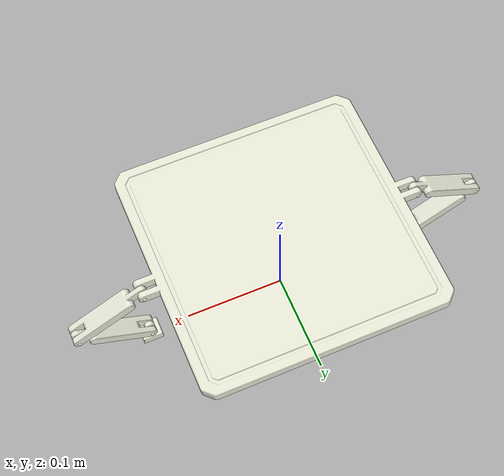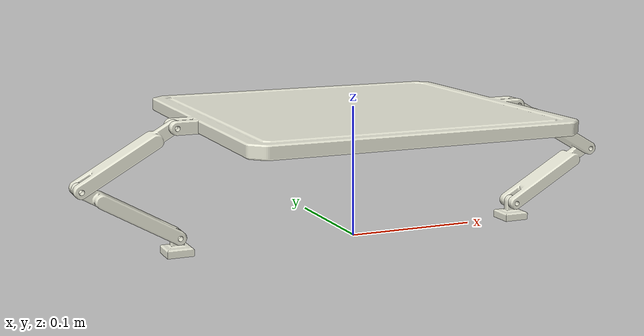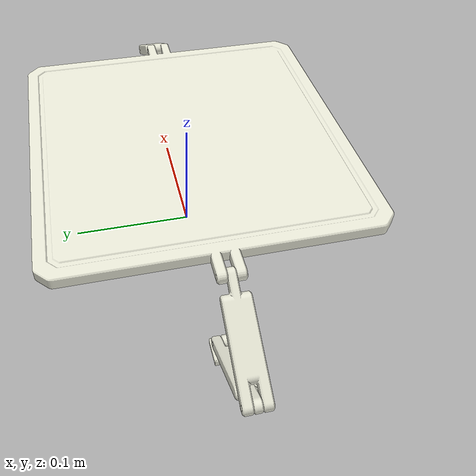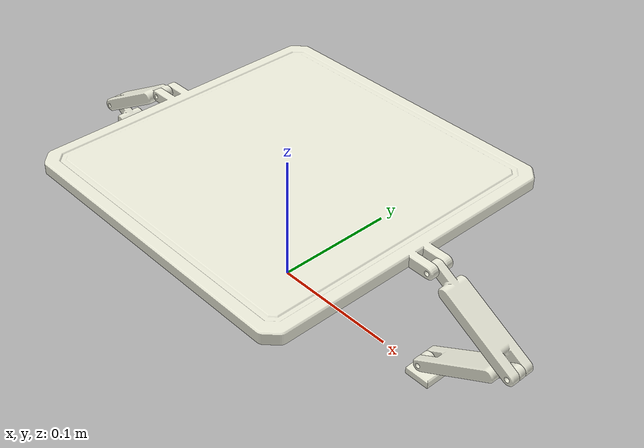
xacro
<?xml version="1.0"?>

<robot name="juggling_platform_2d" xmlns:xacro="http://www.ros.org/wiki/xacro">

    <xacro:include filename="$(find balancing_platform_2d_description)/urdf/include/const.xacro"/>
    <xacro:include filename="$(find balancing_platform_2d_description)/urdf/include/materials.xacro"/>

    <link name="world"/>

    <link name="left_motor">
        <visual>
            <origin rpy="0 0 0" xyz="0 0 0"/>
            <geometry>
                <mesh filename="package://balancing_platform_2d_description/meshes/motor.stl" scale="0.001 0.001 0.001"/>
            </geometry>
            <material name="silver"/>
        </visual>
        <inertial>
            <origin rpy="0 0 0" xyz="${motor_com_x} ${motor_com_y} ${motor_com_z}"/>
            <mass value="${motor_mass}"/>
            <inertia
                ixx="${motor_ixx}" ixy="${motor_ixy}" ixz="${motor_ixz}"
                iyy="${motor_iyy}" iyz="${motor_iyz}"
                izz="${motor_izz}"/>
        </inertial>
    </link>

    <joint name="left_base_joint" type="fixed">
        <origin rpy="0 0 0" xyz="-0.14 0 0"/>
        <parent link="world"/>
        <child link="left_motor"/>
    </joint>

    <link name="left_low_arm">
        <visual>
            <origin rpy="0 0 0" xyz="0 0 0.04"/>
            <geometry>
                <mesh filename="package://balancing_platform_2d_description/meshes/arm.stl" scale="0.001 0.001 0.001"/>
            </geometry>
            <material name="silver"/>
        </visual>
        <inertial>
            <origin rpy="0 0 0" xyz="${arm_com_x} ${arm_com_y} ${arm_com_z}"/>
            <mass value="${arm_mass}"/>
            <inertia
                ixx="${arm_ixx}" ixy="${arm_ixy}" ixz="${arm_ixz}"
                iyy="${arm_iyy}" iyz="${arm_iyz}"
                izz="${arm_izz}"/>
        </inertial>
    </link>

    <joint name="left_motor_joint" type="revolute">
        <origin rpy="0 ${-pi/3} 0" xyz="0 0 0.014"/>
        <parent link="left_motor"/>
        <child link="left_low_arm"/>
        <axis xyz="0 1 0"/>
        <dynamics damping="${damping}" friction="${friction}"/>
        <limit effort="${motor_torque_max}" velocity="${motor_velocity_max}" lower="${motor_position_min}" upper="${motor_position_max}"/>
    </joint>

    <link name="left_top_arm">
        <visual>
            <origin rpy="0 0 0" xyz="0 0 0.04"/>
            <geometry>
                <mesh filename="package://balancing_platform_2d_description/meshes/arm.stl" scale="0.001 0.001 0.001"/>
            </geometry>
            <material name="silver"/>
        </visual>
        <inertial>
            <origin rpy="0 0 0" xyz="${arm_com_x} ${arm_com_y} ${arm_com_z}"/>
            <mass value="${arm_mass}"/>
            <inertia
                ixx="${arm_ixx}" ixy="${arm_ixy}" ixz="${arm_ixz}"
                iyy="${arm_iyy}" iyz="${arm_iyz}"
                izz="${arm_izz}"/>
        </inertial>
    </link>

    <joint name="left_arm_joint" type="revolute">
        <origin rpy="0 ${2*pi/3} 0" xyz="0 0 0.08"/>
        <parent link="left_low_arm"/>
        <child link="left_top_arm"/>
        <axis xyz="0 1 0"/>
        <dynamics damping="${damping}" friction="${friction}"/>
        <limit effort="${arm_torque_max}" velocity="${arm_velocity_max}" lower="${arm_position_min}" upper="${arm_position_max}"/>
    </joint>

    <link name="right_motor">
        <visual>
            <origin rpy="0 0 ${pi}" xyz="0 0 0"/>
            <geometry>
                <mesh filename="package://balancing_platform_2d_description/meshes/motor.stl" scale="0.001 0.001 0.001"/>
            </geometry>
            <material name="silver"/>
        </visual>
        <inertial>
            <origin rpy="0 0 0" xyz="${motor_com_x} ${motor_com_y} ${motor_com_z}"/>
            <mass value="${motor_mass}"/>
            <inertia
                ixx="${motor_ixx}" ixy="${motor_ixy}" ixz="${motor_ixz}"
                iyy="${motor_iyy}" iyz="${motor_iyz}"
                izz="${motor_izz}"/>
        </inertial>
    </link>

    <joint name="right_base_joint" type="fixed">
        <origin rpy="0 0 ${pi}" xyz="0.14 0 0"/>
        <parent link="world"/>
        <child link="right_motor"/>
    </joint>

    <link name="right_low_arm">
        <visual>
            <origin rpy="0 0 0" xyz="0 0 0.04"/>
            <geometry>
                <mesh filename="package://balancing_platform_2d_description/meshes/arm.stl" scale="0.001 0.001 0.001"/>
            </geometry>
            <material name="silver"/>
        </visual>
        <inertial>
            <origin rpy="0 0 0" xyz="${arm_com_x} ${arm_com_y} ${arm_com_z}"/>
            <mass value="${arm_mass}"/>
            <inertia
                ixx="${arm_ixx}" ixy="${arm_ixy}" ixz="${arm_ixz}"
                iyy="${arm_iyy}" iyz="${arm_iyz}"
                izz="${arm_izz}"/>
        </inertial>
    </link>

    <joint name="right_motor_joint" type="revolute">
        <origin rpy="0 ${-pi/3} 0" xyz="0 0 0.014"/>
        <parent link="right_motor"/>
        <child link="right_low_arm"/>
        <axis xyz="0 1 0"/>
        <dynamics damping="${damping}" friction="${friction}"/>
        <limit effort="${motor_torque_max}" velocity="${motor_velocity_max}" lower="${motor_position_min}" upper="${motor_position_max}"/>
    </joint>

    <link name="right_top_arm">
        <visual>
            <origin rpy="0 0 0" xyz="0 0 0.04"/>
            <geometry>
                <mesh filename="package://balancing_platform_2d_description/meshes/arm.stl" scale="0.001 0.001 0.001"/>
            </geometry>
            <material name="silver"/>
        </visual>
        <inertial>
            <origin rpy="0 0 0" xyz="${arm_com_x} ${arm_com_y} ${arm_com_z}"/>
            <mass value="${arm_mass}"/>
            <inertia
                ixx="${arm_ixx}" ixy="${arm_ixy}" ixz="${arm_ixz}"
                iyy="${arm_iyy}" iyz="${arm_iyz}"
                izz="${arm_izz}"/>
        </inertial>
    </link>

    <joint name="right_arm_joint" type="revolute">
        <origin rpy="0 ${2*pi/3} 0" xyz="0 0 0.08"/>
        <parent link="right_low_arm"/>
        <child link="right_top_arm"/>
        <axis xyz="0 1 0"/>
        <dynamics damping="${damping}" friction="${friction}"/>
        <limit effort="${arm_torque_max}" velocity="${arm_velocity_max}" lower="${arm_position_min}" upper="${arm_position_max}"/>
    </joint>

    <link name="platform">
        <visual>
            <origin rpy="0 0 0" xyz="0 -0.14 -0.005"/>
            <geometry>
                <mesh filename="package://balancing_platform_2d_description/meshes/platform.stl" scale="0.001 0.001 0.001"/>
            </geometry>
            <material name="silver"/>
        </visual>
        <collision>
            <origin rpy="0 0 0" xyz="0 -0.14 0.0"/>
            <geometry>
                <box size="${platform_length} ${platform_width} ${platform_height}"/>
            </geometry>
        </collision>
        <inertial>
            <origin rpy="0 0 0" xyz="${platform_com_x} ${platform_com_y} ${platform_com_z}"/>
            <mass value="${platform_mass}"/>
            <inertia
                ixx="${platform_ixx}" ixy="${platform_ixy}" ixz="${platform_ixz}"
                iyy="${platform_iyy}" iyz="${platform_iyz}"
                izz="${platform_izz}"/>
        </inertial>
    </link>

    <joint name="left_platform_joint" type="revolute">
        <origin rpy="${-pi/3} 0 ${pi/2}" xyz="0 0 0.08"/>
        <parent link="left_top_arm"/>
        <child link="platform"/>
        <axis xyz="1 0 0"/>
        <dynamics damping="${damping}" friction="${friction}"/>
        <limit effort="${platform_torque_max}" velocity="${platform_velocity_max}" lower="${platform_position_min}" upper="${platform_position_max}"/>
    </joint>

</robot>

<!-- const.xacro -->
<robot xmlns:xacro="http://www.ros.org/wiki/xacro">

    <!-- simplified collision value -->
    <xacro:property name="platform_width" value="0.2"/>
    <xacro:property name="platform_length" value="0.2"/>
    <xacro:property name="platform_height" value="0.01"/>

    <!-- joint limits -->
    <xacro:property name="damping" value="0.0"/>
    <xacro:property name="friction" value="0.0"/>
    <xacro:property name="motor_position_max" value="3"/>
    <xacro:property name="motor_position_min" value="-3"/>
    <xacro:property name="motor_velocity_max" value="30.1"/>
    <xacro:property name="motor_torque_max" value="23.7"/>
    <xacro:property name="arm_position_max" value="3"/>
    <xacro:property name="arm_position_min" value="-3"/>
    <xacro:property name="arm_velocity_max" value="30.1"/>
    <xacro:property name="arm_torque_max" value="23.7"/>
    <xacro:property name="platform_position_max" value="3"/>
    <xacro:property name="platform_position_min" value="-3"/>
    <xacro:property name="platform_velocity_max" value="20.06"/>
    <xacro:property name="platform_torque_max" value="35.55"/>

    <!-- dynamics inertial value -->
    <!-- motor -->
    <xacro:property name="motor_mass" value="0.023468"/>
    <xacro:property name="motor_com_x" value="0.0"/>
    <xacro:property name="motor_com_y" value="0.00"/>
    <xacro:property name="motor_com_z" value="0.004761"/>
    <xacro:property name="motor_ixx" value="1.031498E-6"/>
    <xacro:property name="motor_ixy" value="0.0"/>
    <xacro:property name="motor_ixz" value="-2.287E-18"/>
    <xacro:property name="motor_iyy" value="1.057814E-6"/>
    <xacro:property name="motor_iyz" value="0.0"/>
    <xacro:property name="motor_izz" value="1.273548E-6"/>
    <!-- arm -->
    <xacro:property name="arm_mass" value="6.921"/>
    <xacro:property name="arm_com_x" value="0.021112"/>
    <xacro:property name="arm_com_y" value="0.00"/>
    <xacro:property name="arm_com_z" value="-0.005366"/>
    <xacro:property name="arm_ixx" value="0.02448"/>
    <xacro:property name="arm_ixy" value="0.00012166"/>
    <xacro:property name="arm_ixz" value="0.0014849"/>
    <xacro:property name="arm_iyy" value="0.098077"/>
    <xacro:property name="arm_iyz" value="-3.12E-05"/>
    <xacro:property name="arm_izz" value="0.107"/>
    <!-- platform -->
    <xacro:property name="platform_mass" value="6.921"/>
    <xacro:property name="platform_com_x" value="0.021112"/>
    <xacro:property name="platform_com_y" value="0.00"/>
    <xacro:property name="platform_com_z" value="-0.005366"/>
    <xacro:property name="platform_ixx" value="0.02448"/>
    <xacro:property name="platform_ixy" value="0.00012166"/>
    <xacro:property name="platform_ixz" value="0.0014849"/>
    <xacro:property name="platform_iyy" value="0.098077"/>
    <xacro:property name="platform_iyz" value="-3.12E-05"/>
    <xacro:property name="platform_izz" value="0.107"/>

</robot>

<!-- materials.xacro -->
<robot>

    <material name="orange">
        <color rgba="${255/255} ${163/255} ${1/255} 1.0"/>
    </material>

    <material name="silver">
        <color rgba="${233/255} ${233/255} ${216/255} 1.0"/>
    </material>

</robot>
